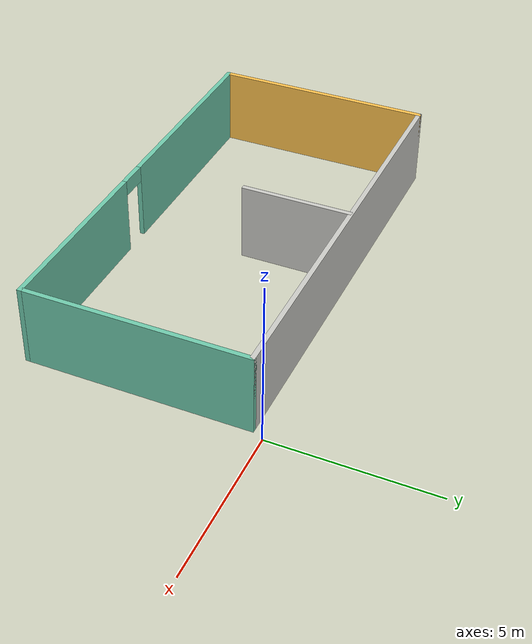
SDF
<?xml version='1.0'?>
<sdf version='1.6'>
  <model name='prj1_building_door'>
    <pose frame=''>-6.8275 -3.6625 0 0 -0 0</pose>
    <link name='Wall_0'>
      <collision name='Wall_0_Collision'>
        <geometry>
          <box>
            <size>7 0.15 2.5</size>
          </box>
        </geometry>
        <pose frame=''>0 0 1.25 0 -0 0</pose>
      </collision>
      <visual name='Wall_0_Visual'>
        <pose frame=''>0 0 1.25 0 -0 0</pose>
        <geometry>
          <box>
            <size>7 0.15 2.5</size>
          </box>
        </geometry>
        <material>
          <script>
            <uri>file://media/materials/scripts/gazebo.material</uri>
            <name>Gazebo/Grey</name>
          </script>
          <ambient>1 0.764706 0.305882 1</ambient>
        </material>
        <meta>
          <layer>0</layer>
        </meta>
      </visual>
      <pose frame=''>-6.7525 -0.1625 0 0 -0 1.5708</pose>
    </link>
    <link name='Wall_1'>
      <collision name='Wall_1_Collision'>
        <geometry>
          <box>
            <size>13.5 0.15 2.5</size>
          </box>
        </geometry>
        <pose frame=''>0 0 1.25 0 -0 0</pose>
      </collision>
      <visual name='Wall_1_Visual'>
        <pose frame=''>0 0 1.25 0 -0 0</pose>
        <geometry>
          <box>
            <size>13.5 0.15 2.5</size>
          </box>
        </geometry>
        <material>
          <script>
            <uri>file://media/materials/scripts/gazebo.material</uri>
            <name>Gazebo/CeilingTiled</name>
          </script>
          <ambient>1 0.764706 0.305882 1</ambient>
        </material>
        <meta>
          <layer>0</layer>
        </meta>
      </visual>
      <pose frame=''>-0.0775 3.2625 0 0 -0 0</pose>
    </link>
    <link name='Wall_2'>
      <collision name='Wall_2_Collision'>
        <geometry>
          <box>
            <size>7 0.15 2.5</size>
          </box>
        </geometry>
        <pose frame=''>0 0 1.25 0 -0 0</pose>
      </collision>
      <visual name='Wall_2_Visual'>
        <pose frame=''>0 0 1.25 0 -0 0</pose>
        <geometry>
          <box>
            <size>7 0.15 2.5</size>
          </box>
        </geometry>
        <material>
          <script>
            <uri>file://media/materials/scripts/gazebo.material</uri>
            <name>Gazebo/Grey</name>
          </script>
          <ambient>0.435294 0.796078 0.67451 1</ambient>
        </material>
        <meta>
          <layer>0</layer>
        </meta>
      </visual>
      <pose frame=''>6.5975 -0.1625 0 0 -0 -1.5708</pose>
    </link>
    <link name='Wall_6'>
      <pose frame=''>-0.0775 -3.5875 0 0 -0 0</pose>
      <visual name='Wall_6_Visual_0'>
        <pose frame=''>-3.4075 0 1.25 0 -0 0</pose>
        <geometry>
          <box>
            <size>6.685 0.15 2.5</size>
          </box>
        </geometry>
        <material>
          <script>
            <uri>file://media/materials/scripts/gazebo.material</uri>
            <name>Gazebo/Grey</name>
          </script>
          <ambient>0.435294 0.796078 0.67451 1</ambient>
        </material>
        <meta>
          <layer>0</layer>
        </meta>
      </visual>
      <collision name='Wall_6_Collision_0'>
        <geometry>
          <box>
            <size>6.685 0.15 2.5</size>
          </box>
        </geometry>
        <pose frame=''>-3.4075 0 1.25 0 -0 0</pose>
      </collision>
      <visual name='Wall_6_Visual_1'>
        <pose frame=''>3.7925 0 1.25 0 -0 0</pose>
        <geometry>
          <box>
            <size>5.915 0.15 2.5</size>
          </box>
        </geometry>
        <material>
          <script>
            <uri>file://media/materials/scripts/gazebo.material</uri>
            <name>Gazebo/Grey</name>
          </script>
          <ambient>0.435294 0.796078 0.67451 1</ambient>
        </material>
        <meta>
          <layer>0</layer>
        </meta>
      </visual>
      <collision name='Wall_6_Collision_1'>
        <geometry>
          <box>
            <size>5.915 0.15 2.5</size>
          </box>
        </geometry>
        <pose frame=''>3.7925 0 1.25 0 -0 0</pose>
      </collision>
      <visual name='Wall_6_Visual_2'>
        <pose frame=''>0.385 0 2.25 0 -0 0</pose>
        <geometry>
          <box>
            <size>0.9 0.15 0.5</size>
          </box>
        </geometry>
        <material>
          <script>
            <uri>file://media/materials/scripts/gazebo.material</uri>
            <name>Gazebo/Grey</name>
          </script>
          <ambient>0.435294 0.796078 0.67451 1</ambient>
        </material>
        <meta>
          <layer>0</layer>
        </meta>
      </visual>
      <collision name='Wall_6_Collision_2'>
        <geometry>
          <box>
            <size>0.9 0.15 0.5</size>
          </box>
        </geometry>
        <pose frame=''>0.385 0 2.25 0 -0 0</pose>
      </collision>
    </link>
    <link name='Wall_8'>
      <collision name='Wall_8_Collision'>
        <geometry>
          <box>
            <size>3.5 0.15 2.5</size>
          </box>
        </geometry>
        <pose frame=''>0 0 1.25 0 -0 0</pose>
      </collision>
      <visual name='Wall_8_Visual'>
        <pose frame=''>0 0 1.25 0 -0 0</pose>
        <geometry>
          <box>
            <size>3.5 0.15 2.5</size>
          </box>
        </geometry>
        <material>
          <script>
            <uri>file://media/materials/scripts/gazebo.material</uri>
            <name>Gazebo/CeilingTiled</name>
          </script>
          <ambient>1 0.764706 0.305882 1</ambient>
        </material>
        <meta>
          <layer>0</layer>
        </meta>
      </visual>
      <pose frame=''>-0.4625 1.5375 0 0 -0 -1.5708</pose>
    </link>
    <static>1</static>
  </model>
</sdf>
